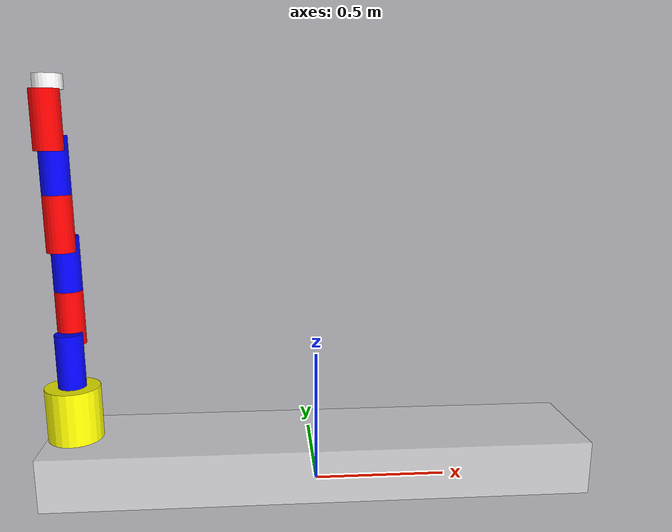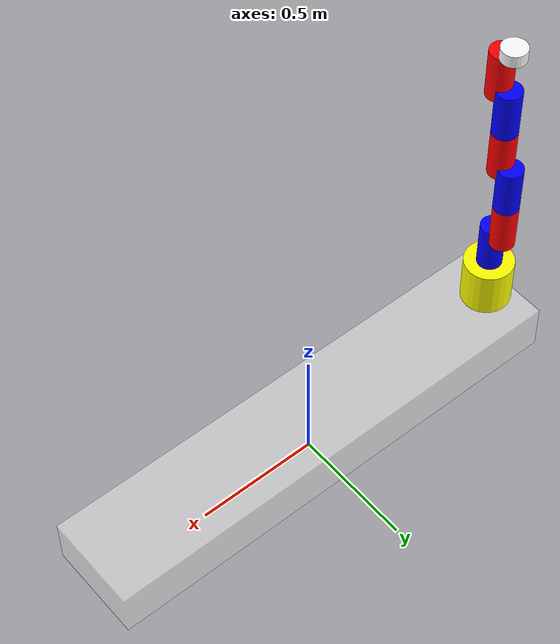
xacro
<?xml version="1.0"?>

<robot name="ex6" xmlns:xacro="http://wiki.ros.org/xacro">
    <xacro:include filename="$(find exercise6)/urdf/ex6_macro.xacro" />

		<xacro:ex6_link name="link_0" material= "white">
			<geometry>
				<box size="2 0.4 0.2"/>
			</geometry>
			<origin xyz="0 0 0.1" rpy="0 0 0"/>
		      <color rgba="1 1 1 0.5"/>
		</xacro:ex6_link>

		<xacro:base_link_macro
			base_link_name="base_link">
		</xacro:base_link_macro>

		<xacro:ex6_joint
			name="joint_0"
			type="prismatic"
			parent="link_0"
			child="base_link">
			<origin xyz="-0.9 0 0.2" />
			<axis xyz="1 0 0"/>
			<limit effort="300" velocity="0.1" lower="0" upper="1.8"/>
		</xacro:ex6_joint>

                <xacro:ex6_joint
			name="joint_1"
			type="revolute"
			parent="base_link"
			child="link_1">
			<origin xyz="0 0 0.2" />
			<axis xyz="0 0 1"/>
			<limit effort="300" velocity="0.1" lower="-3.14" upper="3.14"/>
		</xacro:ex6_joint>

                <xacro:ex6_link name="link_1" material= "blue">
			<geometry>
				<cylinder length="0.2" radius="0.05"/>
			</geometry>
			<origin xyz="0 0 0.1" rpy="0 0 0"/>
		      <color rgba="0 0 1 1"/>

		</xacro:ex6_link>

		<xacro:ex6_joint
			name="joint_2"
			type="revolute"
			parent="link_1"
			child="link_2">
			<origin xyz="0 0.05 0.15" />
			<axis xyz="0 1 0"/>
			<limit effort="300" velocity="0.1" lower="-1.57" upper="1.57"/>
		</xacro:ex6_joint>

		<xacro:ex6_link name="link_2" material= "red">
			<geometry>
				<cylinder length="0.2" radius="0.05"/>
			</geometry>
			<origin xyz="0 0.0 0.1" rpy="0 0 0"/>
		        <color rgba="1 0 0 1"/>

		</xacro:ex6_link>

		<xacro:ex6_joint
			name="joint_3"
			type="revolute"
			parent="link_2"
			child="link_3">
			<origin xyz="0 0 0.20" />
			<axis xyz="0 0 1"/>
			<limit effort="300" velocity="0.1" lower="-3.14" upper="3.14"/>
		</xacro:ex6_joint>

                <xacro:ex6_link name="link_3" material= "blue">
			<geometry>
				<cylinder length="0.2" radius="0.05"/>
			</geometry>
			<origin xyz="0 0 0.1" rpy="0 0 0"/>
		      <color rgba="0 0 1 1"/>

		</xacro:ex6_link>

		<xacro:ex6_joint
			name="joint_4"
			type="revolute"
			parent="link_3"
			child="link_4">
			<origin xyz="0 -0.05 0.15" />
			<axis xyz="0 1 0"/>
			<limit effort="300" velocity="0.1" lower="-1.57" upper="1.57"/>
		</xacro:ex6_joint>

		<xacro:ex6_link name="link_4" material= "red">
			<geometry>
				<cylinder length="0.2" radius="0.05"/>
			</geometry>
			<origin xyz="0 0 0.1" rpy="0 0 0"/>
		        <color rgba="1 0 0 1"/>

		</xacro:ex6_link>

		<xacro:ex6_joint
			name="joint_5"
			type="revolute"
			parent="link_4"
			child="link_5">
			<origin xyz="0 0 0.20" />
			<axis xyz="0 0 1"/>
			<limit effort="300" velocity="0.1" lower="-3.14" upper="3.14"/>
		</xacro:ex6_joint>

                <xacro:ex6_link name="link_5" material= "blue">
			<geometry>
				<cylinder length="0.2" radius="0.05"/>
			</geometry>
			<origin xyz="0 0 0.1" rpy="0 0 0"/>
		      <color rgba="0 0 1 1"/>

		</xacro:ex6_link>

		<xacro:ex6_joint
			name="joint_6"
			type="revolute"
			parent="link_5"
			child="link_6">
			<origin xyz="0 -0.05 0.15" />
			<axis xyz="0 1 0"/>
			<limit effort="300" velocity="0.1" lower="-1.57" upper="1.57"/>
		</xacro:ex6_joint>

		<xacro:ex6_link name="link_6" material= "red">
			<geometry>
				<cylinder length="0.2" radius="0.05"/>
			</geometry>
			<origin xyz="0 0 0.1" rpy="0 0 0"/>
		        <color rgba="1 0 0 1"/>

		</xacro:ex6_link>

		<xacro:ex6_joint
			name="joint_7"
			type="revolute"
			parent="link_6"
			child="link_7">
			<origin xyz="0 0.05 0.20" />
			<axis xyz="0 0 1"/>
			<limit effort="300" velocity="0.1" lower="-3.14" upper="3.14"/>
		</xacro:ex6_joint>

                <xacro:ex6_link name="link_7" material= "white">
			<geometry>
				<cylinder length="0.05" radius="0.05"/>
			</geometry>
			<origin xyz="0 0 0.025" rpy="0 0 0"/>
		      <color rgba="1 1 1 1"/>

		</xacro:ex6_link>

</robot>

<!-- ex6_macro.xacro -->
<robot name="ex6_macro" xmlns:xacro="http://wiki.ros.org/xacro">

	<xacro:macro name="base_link_macro" params="base_link_name">
		<link name="${base_link_name}">
			<visual>
				<geometry>
					<cylinder length="0.2" radius= "0.1" />
				</geometry>
				<origin rpy="0 0 0" xyz="0 0 0.1"/>
					<material name="yellow">
						<color rgba="1 1 0 1"/>
					</material>
			</visual>
			<collision>
				<geometry>
					<cylinder length="0.3" radius="0.1"/>
				</geometry>
				<origin rpy="0 0 0" xyz="0 0 0.1"/>
			</collision>
			<inertial>
				<mass value="1"/>
					<inertia ixx="1.0" ixy="0.0" ixz="0.0" iyy="1.0" iyz="0.0" izz="1.0"/>
					</inertial>
		</link>
	</xacro:macro>

<xacro:macro name="ex6_joint" params="name type parent child *origin *axis *limit">
		<joint name="${name}" type="${type}">
			<parent link="${parent}" />
			<child link="${child}" />
	    <xacro:insert_block name="origin" />
		<xacro:insert_block name="axis" />
	        <xacro:insert_block name="limit" />
	    <dynamics damping="50" friction="1"/>
		</joint>
	</xacro:macro>

	<xacro:macro name="ex6_link" params="name *geometry *origin material *color">
		<link name="${name}">
			<visual>
				<xacro:insert_block name="geometry" />
				<xacro:insert_block name="origin" />
				<material name="${material}" >
				<xacro:insert_block name="color" />
				</material>
		        </visual>
		  <collision>
				<xacro:insert_block name="geometry" />
				<xacro:insert_block name="origin" />
			</collision>
			<inertial>
				<mass value="1"/>
					<inertia ixx="1.0" ixy="0.0" ixz="0.0" iyy="1.0" iyz="0.0" izz="1.0"/>
		  </inertial>
	  </link>
	</xacro:macro>

</robot>
